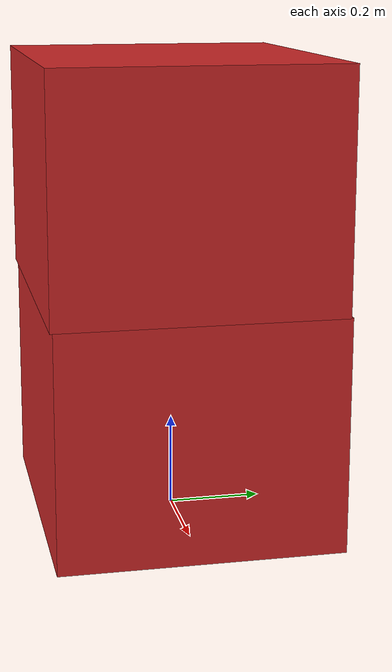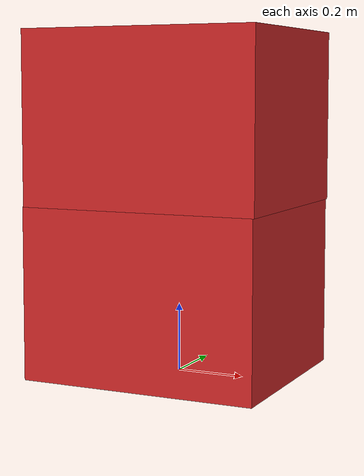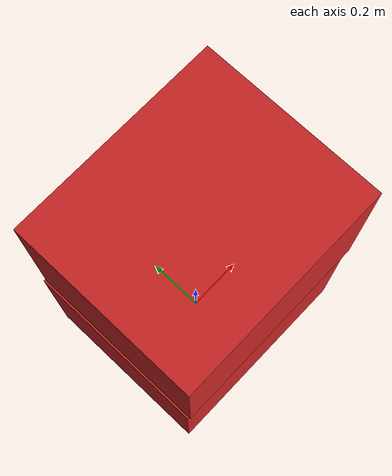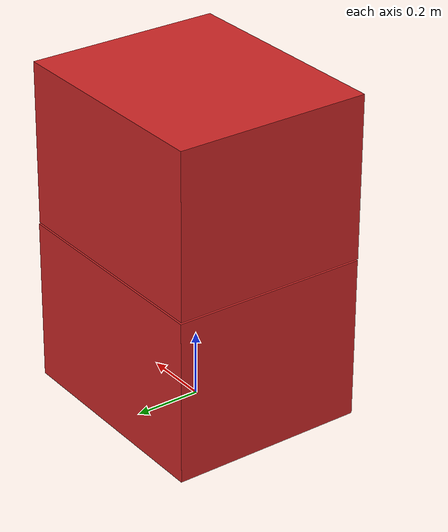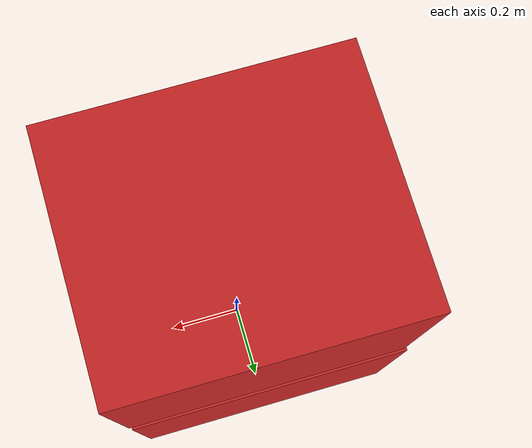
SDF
<?xml version="1.0" encoding="UTF-8"?>
<sdf version='1.4'>
    <model name="baggage_A_x2">
        <model name="baggage_A_0">
            <static>true</static>
            <link name="link">
                <collision name="collision">
                    <geometry>
                    <box>
                        <size>0.7 0.6 0.5</size>
                    </box>
                    </geometry>
                </collision>
                <visual name="visual">
                    <geometry>
                    <box>
                        <size>0.7 0.6 0.5</size>
                    </box>
                    </geometry>
                    <material>
                    <script>
                        <uri>file://media/materials/scripts/gazebo.material</uri>
                        <name>Gazebo/Red</name>
                    </script>
                    </material>
                </visual>
            </link>
            <pose frame=''>0 0 0.25 0 0 0</pose>
        </model>
        <model name="baggage_A_1">
            <static>true</static>
            <link name="link">
                <collision name="collision">
                    <geometry>
                    <box>
                        <size>0.7 0.6 0.5</size>
                    </box>
                    </geometry>
                </collision>
                <visual name="visual">
                    <geometry>
                    <box>
                        <size>0.7 0.6 0.5</size>
                    </box>
                    </geometry>
                    <material>
                    <script>
                        <uri>file://media/materials/scripts/gazebo.material</uri>
                        <name>Gazebo/Red</name>
                    </script>
                    </material>
                </visual>
            </link>
            <pose frame=''>0.0063 -0.0062 0.75 0 0 0</pose>
        </model>
    </model>
</sdf>
